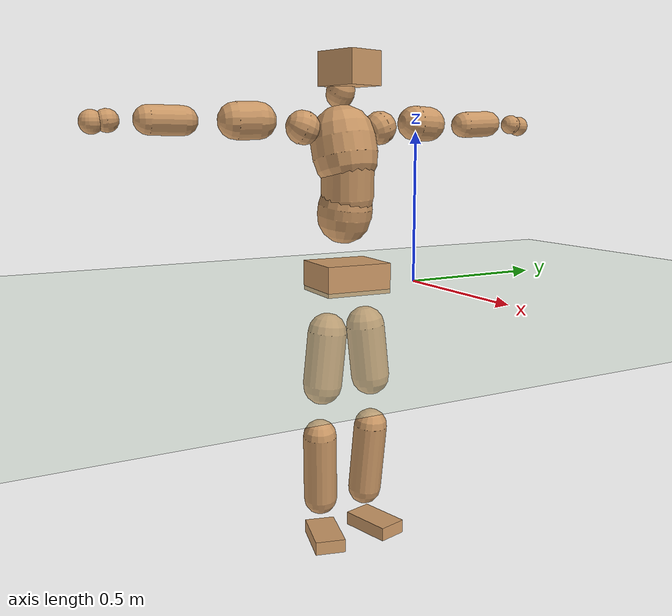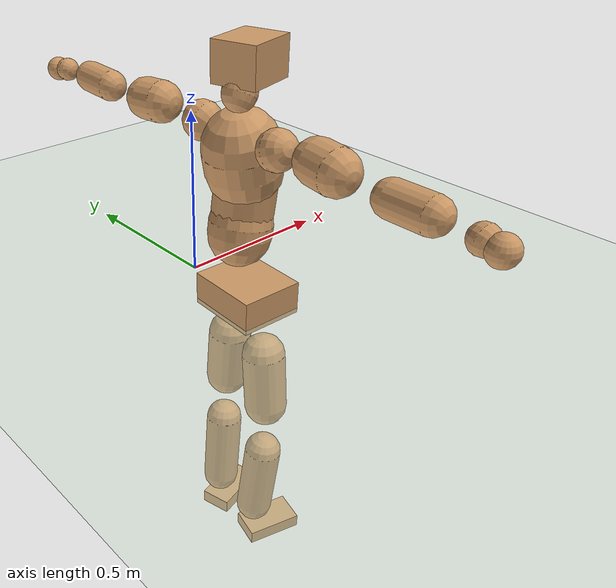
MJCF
<mujoco model="humanoid">
  <compiler coordinate="local" angle="radian"/>
  <default>
    <joint damping="0.0" armature="0.01" stiffness="0.0" limited="true"/>
    <geom conaffinity="1" condim="3" contype="7" margin="0.001" rgba="0.8 0.6 .4 1"/>
  </default>
  <asset>
    <texture type="skybox" builtin="gradient" rgb1=".4 .5 .6" rgb2="0 0 0" width="100" height="100"/>
    <texture builtin="flat" height="1278" mark="cross" markrgb="1 1 1" name="texgeom" random="0.01" rgb1="0.8 0.6 0.4" rgb2="0.8 0.6 0.4" type="cube" width="127"/>
    <texture builtin="checker" height="100" name="texplane" rgb1="0 0 0" rgb2="0.8 0.8 0.8" type="2d" width="100"/>
    <material name="MatPlane" reflectance="0.5" shininess="1" specular="1" texrepeat="60 60" texture="texplane"/>
    <material name="geom" texture="texgeom" texuniform="true"/>
  </asset>
  <worldbody>
    <light cutoff="100" diffuse="1 1 1" dir="-0 0 -1.3" directional="true" exponent="1" pos="0 0 1.3" specular=".1 .1 .1"/>
    <geom conaffinity="1" condim="3" name="floor" pos="0 0 0" rgba="0.8 0.9 0.8 1" size="100 100 .2" type="plane" material="MatPlane"/>
    <body name="Pelvis" pos="-0.002 -0.2545 0.0407">
      <freejoint name="Pelvis"/>
      <geom type="box" contype="1" conaffinity="1" density="5359.375658" pos="-0.0107 0.0004 -0.0075" size="0.0959 0.1112 0.0492" quat="0.9998 0.0000 0.0000 -0.0195" name="Pelvis"/>
      <body name="L_Hip" pos="-0.0115 0.062 -0.0848">
        <joint name="L_Hip_x" type="hinge" pos="0 0 0" axis="1 0 0" stiffness="1600" damping="160" armature="0.02" range="-180.0000 180.0000"/>
        <joint name="L_Hip_y" type="hinge" pos="0 0 0" axis="0 1 0" stiffness="1600" damping="160" armature="0.02" range="-180.0000 180.0000"/>
        <joint name="L_Hip_z" type="hinge" pos="0 0 0" axis="0 0 1" stiffness="1600" damping="160" armature="0.02" range="-180.0000 180.0000"/>
        <geom type="capsule" contype="1" conaffinity="1" density="2040.816327" size="0.0647" fromto="0.0019 0.0098 -0.0942 0.0055 0.0281 -0.2710" name="L_Hip"/>
        <body name="L_Knee" pos="0.0074 0.0378 -0.3652">
          <joint name="L_Knee_x" type="hinge" pos="0 0 0" axis="1 0 0" stiffness="1600" damping="160" armature="0.02" range="-180.0000 180.0000"/>
          <joint name="L_Knee_y" type="hinge" pos="0 0 0" axis="0 1 0" stiffness="1600" damping="160" armature="0.02" range="-180.0000 180.0000"/>
          <joint name="L_Knee_z" type="hinge" pos="0 0 0" axis="0 0 1" stiffness="1600" damping="160" armature="0.02" range="-180.0000 180.0000"/>
          <geom type="capsule" contype="1" conaffinity="1" density="1234.567901" size="0.0569" fromto="-0.0085 -0.0034 -0.0864 -0.0318 -0.0128 -0.3233" name="L_Knee"/>
          <body name="L_Ankle" pos="-0.0403 -0.0162 -0.4097">
            <joint name="L_Ankle_x" type="hinge" pos="0 0 0" axis="1 0 0" stiffness="1600" damping="160" armature="0.02" range="-180.0000 180.0000"/>
            <joint name="L_Ankle_y" type="hinge" pos="0 0 0" axis="0 1 0" stiffness="1600" damping="160" armature="0.02" range="-180.0000 180.0000"/>
            <joint name="L_Ankle_z" type="hinge" pos="0 0 0" axis="0 0 1" stiffness="1600" damping="160" armature="0.02" range="-180.0000 180.0000"/>
            <geom type="box" contype="1" conaffinity="1" density="999.99997" pos="0.0606 0.0154 -0.0284" size="0.0886 0.0493 0.0227" quat="0.9923 0.0000 0.0000 0.1240" name="L_Ankle"/>
            <body name="L_Toe" pos="0.1211 0.0307 -0.0569">
              <joint name="L_Toe_x" type="hinge" pos="0 0 0" axis="1 0 0" stiffness="1000" damping="100" armature="0.02" range="-180.0000 180.0000"/>
              <joint name="L_Toe_y" type="hinge" pos="0 0 0" axis="0 1 0" stiffness="1000" damping="100" armature="0.02" range="-180.0000 180.0000"/>
              <joint name="L_Toe_z" type="hinge" pos="0 0 0" axis="0 0 1" stiffness="1000" damping="100" armature="0.02" range="-180.0000 180.0000"/>
              <geom type="box" contype="1" conaffinity="1" density="8695308.797633" pos="0.0000 0.0000 0.0286" size="0.001 0.0025 0.0011" quat="0.9916 0.0000 0.0000 0.1296" name="L_Toe"/>
            </body>
          </body>
        </body>
      </body>
      <body name="R_Hip" pos="-0.0061 -0.0636 -0.0937">
        <joint name="R_Hip_x" type="hinge" pos="0 0 0" axis="1 0 0" stiffness="1600" damping="160" armature="0.02" range="-180.0000 180.0000"/>
        <joint name="R_Hip_y" type="hinge" pos="0 0 0" axis="0 1 0" stiffness="1600" damping="160" armature="0.02" range="-180.0000 180.0000"/>
        <joint name="R_Hip_z" type="hinge" pos="0 0 0" axis="0 0 1" stiffness="1600" damping="160" armature="0.02" range="-180.0000 180.0000"/>
        <geom type="capsule" contype="1" conaffinity="1" density="2040.816327" size="0.0643" fromto="-0.0011 -0.0098 -0.0938 -0.0031 -0.0283 -0.2718" name="R_Hip"/>
        <body name="R_Knee" pos="-0.0042 -0.038 -0.3656">
          <joint name="R_Knee_x" type="hinge" pos="0 0 0" axis="1 0 0" stiffness="1600" damping="160" armature="0.02" range="-180.0000 180.0000"/>
          <joint name="R_Knee_y" type="hinge" pos="0 0 0" axis="0 1 0" stiffness="1600" damping="160" armature="0.02" range="-180.0000 180.0000"/>
          <joint name="R_Knee_z" type="hinge" pos="0 0 0" axis="0 0 1" stiffness="1600" damping="160" armature="0.02" range="-180.0000 180.0000"/>
          <geom type="capsule" contype="1" conaffinity="1" density="1234.567901" size="0.0566" fromto="-0.0079 0.0043 -0.0862 -0.0292 0.0157 -0.3174" name="R_Knee"/>
          <body name="R_Ankle" pos="-0.0371 0.02 -0.4035">
            <joint name="R_Ankle_x" type="hinge" pos="0 0 0" axis="1 0 0" stiffness="1600" damping="160" armature="0.02" range="-180.0000 180.0000"/>
            <joint name="R_Ankle_y" type="hinge" pos="0 0 0" axis="0 1 0" stiffness="1600" damping="160" armature="0.02" range="-180.0000 180.0000"/>
            <joint name="R_Ankle_z" type="hinge" pos="0 0 0" axis="0 0 1" stiffness="1600" damping="160" armature="0.02" range="-180.0000 180.0000"/>
            <geom type="box" contype="1" conaffinity="1" density="999.999965" pos="0.0640 -0.0167 -0.0289" size="0.0879 0.0503 0.0222" quat="0.9919 0.0000 0.0000 -0.1273" name="R_Ankle"/>
            <body name="R_Toe" pos="0.128 -0.0334 -0.0578">
              <joint name="R_Toe_x" type="hinge" pos="0 0 0" axis="1 0 0" stiffness="1000" damping="100" armature="0.02" range="-180.0000 180.0000"/>
              <joint name="R_Toe_y" type="hinge" pos="0 0 0" axis="0 1 0" stiffness="1000" damping="100" armature="0.02" range="-180.0000 180.0000"/>
              <joint name="R_Toe_z" type="hinge" pos="0 0 0" axis="0 0 1" stiffness="1000" damping="100" armature="0.02" range="-180.0000 180.0000"/>
              <geom type="box" contype="1" conaffinity="1" density="8114008.562905" pos="0.0000 0.0000 0.0289" size="0.0011 0.0025 0.0011" quat="0.9930 0.0000 0.0000 -0.1182" name="R_Toe"/>
            </body>
          </body>
        </body>
      </body>
      <body name="Torso" pos="-0.0466 0.0041 0.1337">
        <joint name="Torso_x" type="hinge" pos="0 0 0" axis="1 0 0" stiffness="2000" damping="200" armature="0.02" range="-180.0000 180.0000"/>
        <joint name="Torso_y" type="hinge" pos="0 0 0" axis="0 1 0" stiffness="2000" damping="200" armature="0.02" range="-180.0000 180.0000"/>
        <joint name="Torso_z" type="hinge" pos="0 0 0" axis="0 0 1" stiffness="2000" damping="200" armature="0.02" range="-180.0000 180.0000"/>
        <geom type="capsule" contype="1" conaffinity="1" density="2040.816327" size="0.0895" fromto="0.0161 0.0032 0.0879 0.0100 0.0020 0.0544" name="Torso"/>
        <body name="Spine" pos="0.0261 0.0051 0.1423">
          <joint name="Spine_x" type="hinge" pos="0 0 0" axis="1 0 0" stiffness="2000" damping="200" armature="0.02" range="-180.0000 180.0000"/>
          <joint name="Spine_y" type="hinge" pos="0 0 0" axis="0 1 0" stiffness="2000" damping="200" armature="0.02" range="-180.0000 180.0000"/>
          <joint name="Spine_z" type="hinge" pos="0 0 0" axis="0 0 1" stiffness="2000" damping="200" armature="0.02" range="-180.0000 180.0000"/>
          <geom type="capsule" contype="1" conaffinity="1" density="2040.816327" size="0.0859" fromto="0.0088 -0.0035 0.0853 -0.0028 0.0011 -0.0275" name="Spine"/>
          <body name="Chest" pos="0.0059 -0.0024 0.0579">
            <joint name="Chest_x" type="hinge" pos="0 0 0" axis="1 0 0" stiffness="2000" damping="200" armature="0.02" range="-180.0000 180.0000"/>
            <joint name="Chest_y" type="hinge" pos="0 0 0" axis="0 1 0" stiffness="2000" damping="200" armature="0.02" range="-180.0000 180.0000"/>
            <joint name="Chest_z" type="hinge" pos="0 0 0" axis="0 0 1" stiffness="2000" damping="200" armature="0.02" range="-180.0000 180.0000"/>
            <geom type="capsule" contype="1" conaffinity="1" density="2040.816327" size="0.1062" fromto="-0.0240 -0.0055 0.1033 -0.0102 -0.0024 0.0441" name="Chest"/>
            <body name="Neck" pos="-0.0539 -0.013 0.2112">
              <joint name="Neck_x" type="hinge" pos="0 0 0" axis="1 0 0" stiffness="1000" damping="100" armature="0.02" range="-180.0000 180.0000"/>
              <joint name="Neck_y" type="hinge" pos="0 0 0" axis="0 1 0" stiffness="1000" damping="100" armature="0.02" range="-180.0000 180.0000"/>
              <joint name="Neck_z" type="hinge" pos="0 0 0" axis="0 0 1" stiffness="1000" damping="100" armature="0.02" range="-180.0000 180.0000"/>
              <geom type="capsule" contype="1" conaffinity="1" density="1000" size="0.0458" fromto="0.0224 0.0053 0.0395 0.0174 0.0041 0.0308" name="Neck"/>
              <body name="Head" pos="0.0398 0.0094 0.0703">
                <joint name="Head_x" type="hinge" pos="0 0 0" axis="1 0 0" stiffness="1000" damping="100" armature="0.02" range="-180.0000 180.0000"/>
                <joint name="Head_y" type="hinge" pos="0 0 0" axis="0 1 0" stiffness="1000" damping="100" armature="0.02" range="-180.0000 180.0000"/>
                <joint name="Head_z" type="hinge" pos="0 0 0" axis="0 0 1" stiffness="1000" damping="100" armature="0.02" range="-180.0000 180.0000"/>
                <geom type="box" contype="1" conaffinity="1" density="2250.000059" pos="0.0209 0.0057 0.0362" size="0.077 0.0643 0.0533" quat="0.9912 0.0000 0.0000 0.1325" name="Head"/>
              </body>
            </body>
            <body name="L_Thorax" pos="-0.0216 0.0739 0.1166">
              <joint name="L_Thorax_x" type="hinge" pos="0 0 0" axis="1 0 0" stiffness="1000" damping="100" armature="0.02" range="-180.0000 180.0000"/>
              <joint name="L_Thorax_y" type="hinge" pos="0 0 0" axis="0 1 0" stiffness="1000" damping="100" armature="0.02" range="-180.0000 180.0000"/>
              <joint name="L_Thorax_z" type="hinge" pos="0 0 0" axis="0 0 1" stiffness="1000" damping="100" armature="0.02" range="-180.0000 180.0000"/>
              <geom type="capsule" contype="1" conaffinity="1" density="1000" size="0.055" fromto="-0.0105 0.0625 0.0207 -0.0108 0.0643 0.0213" name="L_Thorax"/>
              <body name="L_Shoulder" pos="-0.0213 0.1268 0.042">
                <joint name="L_Shoulder_x" type="hinge" pos="0 0 0" axis="1 0 0" stiffness="1000" damping="100" armature="0.02" range="-720.0000 720.0000"/>
                <joint name="L_Shoulder_y" type="hinge" pos="0 0 0" axis="0 1 0" stiffness="1000" damping="100" armature="0.02" range="-720.0000 720.0000"/>
                <joint name="L_Shoulder_z" type="hinge" pos="0 0 0" axis="0 0 1" stiffness="1000" damping="100" armature="0.02" range="-720.0000 720.0000"/>
                <geom type="capsule" contype="1" conaffinity="1" density="1000" size="0.0582" fromto="-0.0094 0.0876 -0.0036 -0.0156 0.1458 -0.0060" name="L_Shoulder"/>
                <body name="L_Elbow" pos="-0.0249 0.2334 -0.0096">
                  <joint name="L_Elbow_x" type="hinge" pos="0 0 0" axis="1 0 0" stiffness="1000" damping="100" armature="0.02" range="-720.0000 720.0000"/>
                  <joint name="L_Elbow_y" type="hinge" pos="0 0 0" axis="0 1 0" stiffness="1000" damping="100" armature="0.02" range="-720.0000 720.0000"/>
                  <joint name="L_Elbow_z" type="hinge" pos="0 0 0" axis="0 0 1" stiffness="1000" damping="100" armature="0.02" range="-720.0000 720.0000"/>
                  <geom type="capsule" contype="1" conaffinity="1" density="1000" size="0.0444" fromto="-0.0018 0.0743 0.0034 -0.0044 0.1789 0.0082" name="L_Elbow"/>
                  <body name="L_Wrist" pos="-0.0063 0.2532 0.0117">
                    <joint name="L_Wrist_x" type="hinge" pos="0 0 0" axis="1 0 0" stiffness="600" damping="60" armature="0.02" range="-180.0000 180.0000"/>
                    <joint name="L_Wrist_y" type="hinge" pos="0 0 0" axis="0 1 0" stiffness="600" damping="60" armature="0.02" range="-180.0000 180.0000"/>
                    <joint name="L_Wrist_z" type="hinge" pos="0 0 0" axis="0 0 1" stiffness="600" damping="60" armature="0.02" range="-180.0000 180.0000"/>
                    <geom type="capsule" contype="1" conaffinity="1" density="1000" size="0.0336" fromto="-0.0072 0.0409 -0.0050 -0.0075 0.0429 -0.0052" name="L_Wrist"/>
                    <body name="L_Hand" pos="-0.0147 0.0838 -0.0102">
                      <joint name="L_Hand_x" type="hinge" pos="0 0 0" axis="1 0 0" stiffness="600" damping="60" armature="0.02" range="-180.0000 180.0000"/>
                      <joint name="L_Hand_y" type="hinge" pos="0 0 0" axis="0 1 0" stiffness="600" damping="60" armature="0.02" range="-180.0000 180.0000"/>
                      <joint name="L_Hand_z" type="hinge" pos="0 0 0" axis="0 0 1" stiffness="600" damping="60" armature="0.02" range="-180.0000 180.0000"/>
                      <geom type="sphere" contype="1" conaffinity="1" density="1000" size="0.0345" pos="0.0000 0.0000 0.0000" name="L_Hand"/>
                    </body>
                  </body>
                </body>
              </body>
            </body>
            <body name="R_Thorax" pos="-0.027 -0.0845 0.1146">
              <joint name="R_Thorax_x" type="hinge" pos="0 0 0" axis="1 0 0" stiffness="1000" damping="100" armature="0.02" range="-180.0000 180.0000"/>
              <joint name="R_Thorax_y" type="hinge" pos="0 0 0" axis="0 1 0" stiffness="1000" damping="100" armature="0.02" range="-180.0000 180.0000"/>
              <joint name="R_Thorax_z" type="hinge" pos="0 0 0" axis="0 0 1" stiffness="1000" damping="100" armature="0.02" range="-180.0000 180.0000"/>
              <geom type="capsule" contype="1" conaffinity="1" density="1000" size="0.0544" fromto="-0.0055 -0.0572 0.0215 -0.0057 -0.0590 0.0222" name="R_Thorax"/>
              <body name="R_Shoulder" pos="-0.0112 -0.1162 0.0437">
                <joint name="R_Shoulder_x" type="hinge" pos="0 0 0" axis="1 0 0" stiffness="1000" damping="100" armature="0.02" range="-720.0000 720.0000"/>
                <joint name="R_Shoulder_y" type="hinge" pos="0 0 0" axis="0 1 0" stiffness="1000" damping="100" armature="0.02" range="-720.0000 720.0000"/>
                <joint name="R_Shoulder_z" type="hinge" pos="0 0 0" axis="0 0 1" stiffness="1000" damping="100" armature="0.02" range="-720.0000 720.0000"/>
                <geom type="capsule" contype="1" conaffinity="1" density="1000" size="0.0583" fromto="-0.0120 -0.0875 -0.0021 -0.0211 -0.1543 -0.0036" name="R_Shoulder"/>
                <body name="R_Elbow" pos="-0.0331 -0.2418 -0.0057">
                  <joint name="R_Elbow_x" type="hinge" pos="0 0 0" axis="1 0 0" stiffness="1000" damping="100" armature="0.02" range="-720.0000 720.0000"/>
                  <joint name="R_Elbow_y" type="hinge" pos="0 0 0" axis="0 1 0" stiffness="1000" damping="100" armature="0.02" range="-720.0000 720.0000"/>
                  <joint name="R_Elbow_z" type="hinge" pos="0 0 0" axis="0 0 1" stiffness="1000" damping="100" armature="0.02" range="-720.0000 720.0000"/>
                  <geom type="capsule" contype="1" conaffinity="1" density="1000" size="0.0446" fromto="-0.0018 -0.0746 0.0008 -0.0042 -0.1782 0.0019" name="R_Elbow"/>
                  <body name="R_Wrist" pos="-0.006 -0.2529 0.0027">
                    <joint name="R_Wrist_x" type="hinge" pos="0 0 0" axis="1 0 0" stiffness="600" damping="60" armature="0.02" range="-180.0000 180.0000"/>
                    <joint name="R_Wrist_y" type="hinge" pos="0 0 0" axis="0 1 0" stiffness="600" damping="60" armature="0.02" range="-180.0000 180.0000"/>
                    <joint name="R_Wrist_z" type="hinge" pos="0 0 0" axis="0 0 1" stiffness="600" damping="60" armature="0.02" range="-180.0000 180.0000"/>
                    <geom type="capsule" contype="1" conaffinity="1" density="1000" size="0.0344" fromto="-0.0046 -0.0423 -0.0041 -0.0048 -0.0443 -0.0043" name="R_Wrist"/>
                    <body name="R_Hand" pos="-0.0093 -0.0866 -0.0083">
                      <joint name="R_Hand_x" type="hinge" pos="0 0 0" axis="1 0 0" stiffness="600" damping="60" armature="0.02" range="-180.0000 180.0000"/>
                      <joint name="R_Hand_y" type="hinge" pos="0 0 0" axis="0 1 0" stiffness="600" damping="60" armature="0.02" range="-180.0000 180.0000"/>
                      <joint name="R_Hand_z" type="hinge" pos="0 0 0" axis="0 0 1" stiffness="600" damping="60" armature="0.02" range="-180.0000 180.0000"/>
                      <geom type="sphere" contype="1" conaffinity="1" density="1000" size="0.0353" pos="0.0000 0.0000 0.0000" name="R_Hand"/>
                    </body>
                  </body>
                </body>
              </body>
            </body>
          </body>
        </body>
      </body>
    </body>
  </worldbody>
  <actuator>
    <motor name="L_Hip_x" joint="L_Hip_x" gear="500"/>
    <motor name="L_Hip_y" joint="L_Hip_y" gear="500"/>
    <motor name="L_Hip_z" joint="L_Hip_z" gear="500"/>
    <motor name="L_Knee_x" joint="L_Knee_x" gear="500"/>
    <motor name="L_Knee_y" joint="L_Knee_y" gear="500"/>
    <motor name="L_Knee_z" joint="L_Knee_z" gear="500"/>
    <motor name="L_Ankle_x" joint="L_Ankle_x" gear="500"/>
    <motor name="L_Ankle_y" joint="L_Ankle_y" gear="500"/>
    <motor name="L_Ankle_z" joint="L_Ankle_z" gear="500"/>
    <motor name="L_Toe_x" joint="L_Toe_x" gear="500"/>
    <motor name="L_Toe_y" joint="L_Toe_y" gear="500"/>
    <motor name="L_Toe_z" joint="L_Toe_z" gear="500"/>
    <motor name="R_Hip_x" joint="R_Hip_x" gear="500"/>
    <motor name="R_Hip_y" joint="R_Hip_y" gear="500"/>
    <motor name="R_Hip_z" joint="R_Hip_z" gear="500"/>
    <motor name="R_Knee_x" joint="R_Knee_x" gear="500"/>
    <motor name="R_Knee_y" joint="R_Knee_y" gear="500"/>
    <motor name="R_Knee_z" joint="R_Knee_z" gear="500"/>
    <motor name="R_Ankle_x" joint="R_Ankle_x" gear="500"/>
    <motor name="R_Ankle_y" joint="R_Ankle_y" gear="500"/>
    <motor name="R_Ankle_z" joint="R_Ankle_z" gear="500"/>
    <motor name="R_Toe_x" joint="R_Toe_x" gear="500"/>
    <motor name="R_Toe_y" joint="R_Toe_y" gear="500"/>
    <motor name="R_Toe_z" joint="R_Toe_z" gear="500"/>
    <motor name="Torso_x" joint="Torso_x" gear="500"/>
    <motor name="Torso_y" joint="Torso_y" gear="500"/>
    <motor name="Torso_z" joint="Torso_z" gear="500"/>
    <motor name="Spine_x" joint="Spine_x" gear="500"/>
    <motor name="Spine_y" joint="Spine_y" gear="500"/>
    <motor name="Spine_z" joint="Spine_z" gear="500"/>
    <motor name="Chest_x" joint="Chest_x" gear="500"/>
    <motor name="Chest_y" joint="Chest_y" gear="500"/>
    <motor name="Chest_z" joint="Chest_z" gear="500"/>
    <motor name="Neck_x" joint="Neck_x" gear="500"/>
    <motor name="Neck_y" joint="Neck_y" gear="500"/>
    <motor name="Neck_z" joint="Neck_z" gear="500"/>
    <motor name="Head_x" joint="Head_x" gear="500"/>
    <motor name="Head_y" joint="Head_y" gear="500"/>
    <motor name="Head_z" joint="Head_z" gear="500"/>
    <motor name="L_Thorax_x" joint="L_Thorax_x" gear="500"/>
    <motor name="L_Thorax_y" joint="L_Thorax_y" gear="500"/>
    <motor name="L_Thorax_z" joint="L_Thorax_z" gear="500"/>
    <motor name="L_Shoulder_x" joint="L_Shoulder_x" gear="500"/>
    <motor name="L_Shoulder_y" joint="L_Shoulder_y" gear="500"/>
    <motor name="L_Shoulder_z" joint="L_Shoulder_z" gear="500"/>
    <motor name="L_Elbow_x" joint="L_Elbow_x" gear="500"/>
    <motor name="L_Elbow_y" joint="L_Elbow_y" gear="500"/>
    <motor name="L_Elbow_z" joint="L_Elbow_z" gear="500"/>
    <motor name="L_Wrist_x" joint="L_Wrist_x" gear="500"/>
    <motor name="L_Wrist_y" joint="L_Wrist_y" gear="500"/>
    <motor name="L_Wrist_z" joint="L_Wrist_z" gear="500"/>
    <motor name="L_Hand_x" joint="L_Hand_x" gear="500"/>
    <motor name="L_Hand_y" joint="L_Hand_y" gear="500"/>
    <motor name="L_Hand_z" joint="L_Hand_z" gear="500"/>
    <motor name="R_Thorax_x" joint="R_Thorax_x" gear="500"/>
    <motor name="R_Thorax_y" joint="R_Thorax_y" gear="500"/>
    <motor name="R_Thorax_z" joint="R_Thorax_z" gear="500"/>
    <motor name="R_Shoulder_x" joint="R_Shoulder_x" gear="500"/>
    <motor name="R_Shoulder_y" joint="R_Shoulder_y" gear="500"/>
    <motor name="R_Shoulder_z" joint="R_Shoulder_z" gear="500"/>
    <motor name="R_Elbow_x" joint="R_Elbow_x" gear="500"/>
    <motor name="R_Elbow_y" joint="R_Elbow_y" gear="500"/>
    <motor name="R_Elbow_z" joint="R_Elbow_z" gear="500"/>
    <motor name="R_Wrist_x" joint="R_Wrist_x" gear="500"/>
    <motor name="R_Wrist_y" joint="R_Wrist_y" gear="500"/>
    <motor name="R_Wrist_z" joint="R_Wrist_z" gear="500"/>
    <motor name="R_Hand_x" joint="R_Hand_x" gear="500"/>
    <motor name="R_Hand_y" joint="R_Hand_y" gear="500"/>
    <motor name="R_Hand_z" joint="R_Hand_z" gear="500"/>
  </actuator>
  <contact>
    <exclude body1="Torso" body2="Chest"/>
    <exclude body1="Head" body2="Chest"/>
    <exclude body1="R_Knee" body2="R_Toe"/>
    <exclude body1="R_Knee" body2="L_Ankle"/>
    <exclude body1="R_Knee" body2="L_Toe"/>
    <exclude body1="L_Knee" body2="L_Toe"/>
    <exclude body1="L_Knee" body2="R_Ankle"/>
    <exclude body1="L_Knee" body2="R_Toe"/>
    <exclude body1="L_Shoulder" body2="Chest"/>
    <exclude body1="R_Shoulder" body2="Chest"/>
  </contact>
  <sensor/>
  <size njmax="700" nconmax="700"/>
</mujoco>
